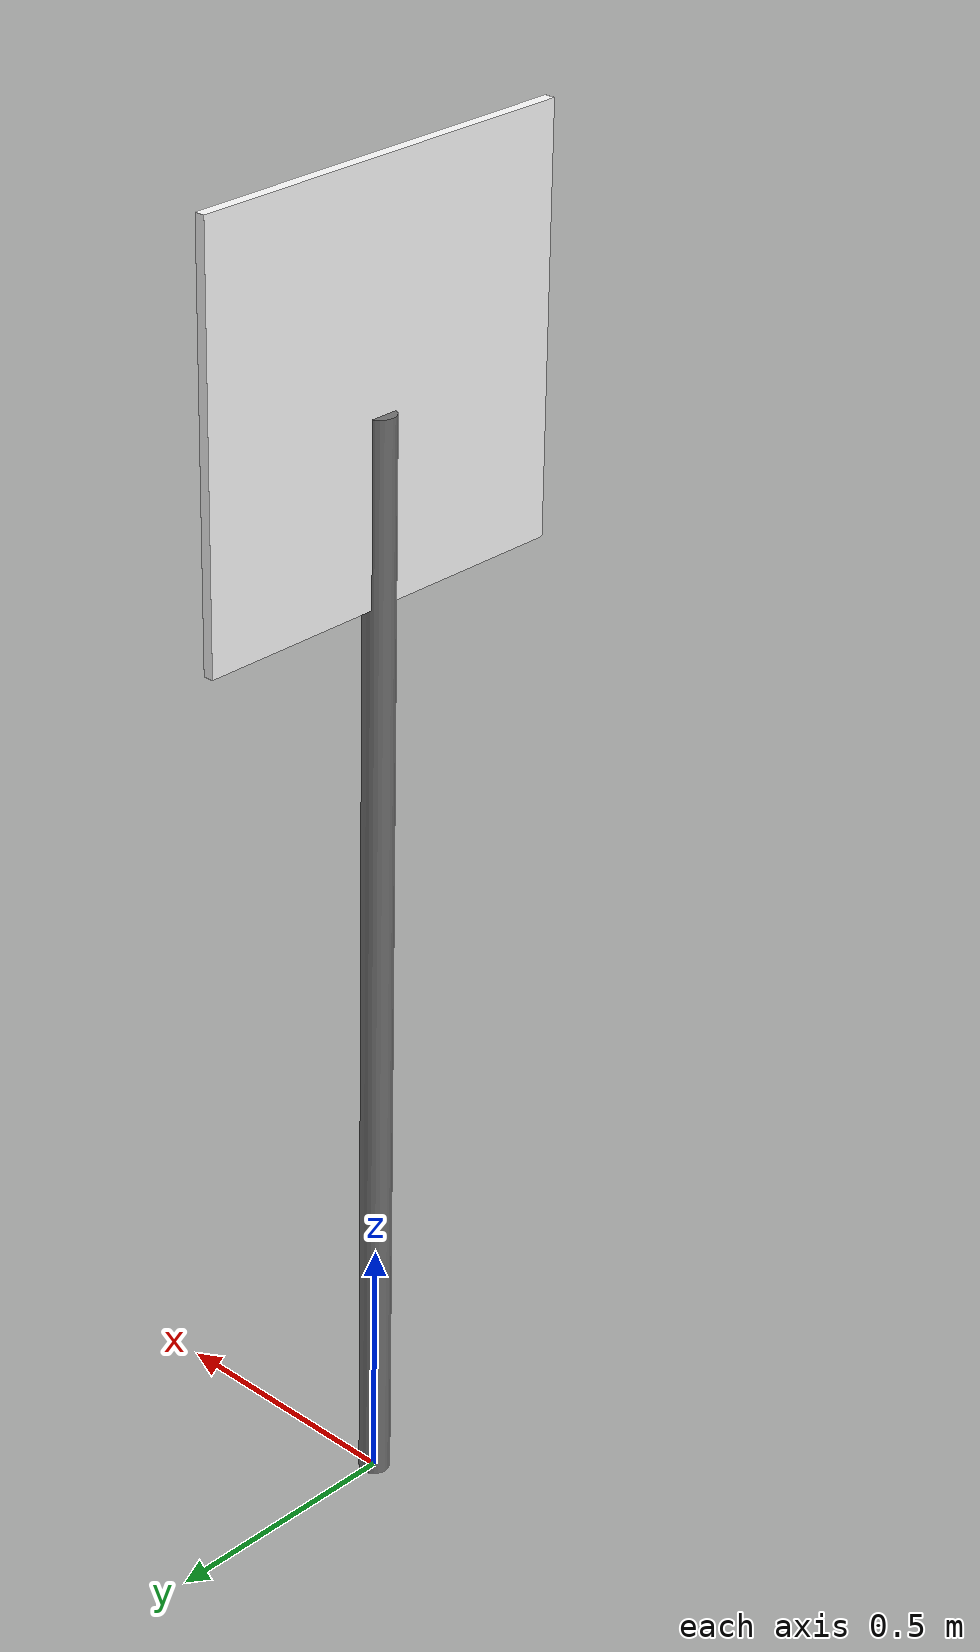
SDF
<?xml version="1.0"?>
<sdf version="1.9">
  <model name="speed30_new">
    <static>true</static>

    <link name="speed30_link">

      <visual name="pole_visual">
        <pose>0 0 1.10 0 0 0</pose>
        <geometry>
          <cylinder>
            <radius>0.03</radius>
            <length>2.20</length>
          </cylinder>
        </geometry>
        <material>
          <ambient>0.45 0.45 0.45 1</ambient>
          <diffuse>0.45 0.45 0.45 1</diffuse>
        </material>
      </visual>

      <collision name="pole_collision">
        <pose>0 0 1.10 0 0 0</pose>
        <geometry>
          <cylinder>
            <radius>0.03</radius>
            <length>2.20</length>
          </cylinder>
        </geometry>
      </collision>

      <visual name="sign_panel">
        <pose>0 0 2.25 0 0 0</pose>
        <geometry>
          <box>
            <size>0.02 0.80 0.80</size>
          </box>
        </geometry>
        <material>
          <ambient>1 1 1 1</ambient>
          <diffuse>1 1 1 1</diffuse>
          <pbr>
            <metal>
              <albedo_map>model://speed30_new/materials/textures/speed_limit_30.png</albedo_map>
              <roughness>0.5</roughness>
              <metalness>0.0</metalness>
            </metal>
          </pbr>
        </material>
      </visual>

      <collision name="sign_collision">
        <pose>0 0 2.25 0 0 0</pose>
        <geometry>
          <box>
            <size>0.03 0.80 0.80</size>
          </box>
        </geometry>
      </collision>

    </link>
  </model>
</sdf>
